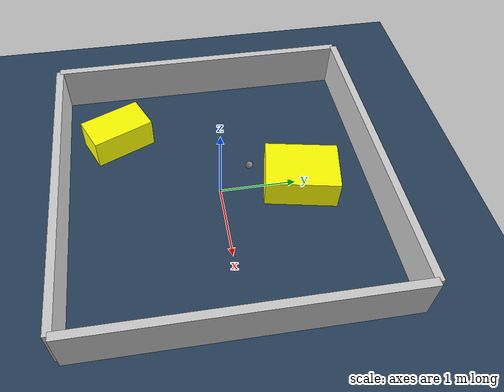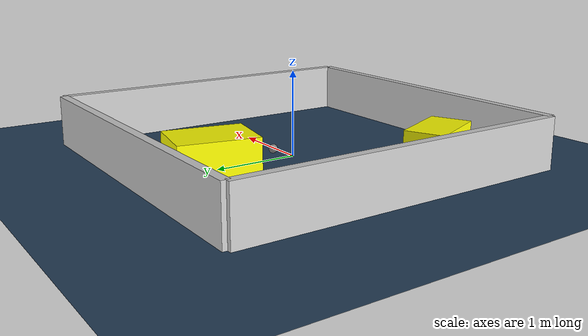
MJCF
<?xml version="1.0" ?>
<mujoco model="generated_environment">
  <option timestep="0.01" integrator="RK4" cone="elliptic"/>
  <default>
    <geom density="1"/>
  </default>
  <asset>
    <texture builtin="gradient" height="3072" rgb1="0.3 0.5 0.7" rgb2="0 0 0" type="skybox" width="512"/>
    <texture builtin="checker" height="300" mark="edge" markrgb="0.8 0.8 0.8" name="groundplane" rgb1="0.2 0.3 0.4" rgb2="0.1 0.2 0.3" type="2d" width="300"/>
    <material name="groundplane" reflectance="0.2" texrepeat="5 5" texture="groundplane" texuniform="true"/>
    <material name="robot" rgba="0.0 1.0 0.0 1"/>
  </asset>
  <worldbody>
    <light dir="0 0 -1" directional="true" pos="0 0 1.5"/>
    <geom condim="4" friction="1.0 0.005 0.001" material="groundplane" name="floor" size="0 0 0.05" type="plane"/>
    <body name="walls">
      <geom name="wall_1" condim="4" pos="-2.0 0.0 0.3" rgba="0.800000011920929 0.800000011920929 0.800000011920929 1.0" size="0.05 2.0 0.3" type="box"/>
      <geom name="wall_2" condim="4" pos="2.0 0.0 0.3" rgba="0.800000011920929 0.800000011920929 0.800000011920929 1.0" size="0.05 2.0 0.3" type="box"/>
      <geom name="wall_3" condim="4" pos="0.0 -2.0 0.3" rgba="0.800000011920929 0.800000011920929 0.800000011920929 1.0" size="2.0 0.05 0.3" type="box"/>
      <geom name="wall_4" condim="4" pos="0.0 2.0 0.3" rgba="0.800000011920929 0.800000011920929 0.800000011920929 1.0" size="2.0 0.05 0.3" type="box"/>
    </body>
    <body name="robot">
      <joint name="joint_x" type="slide" pos="0 0 0" axis="1 0 0"/>
      <joint name="joint_y" type="slide" pos="0 0 0" axis="0 1 0"/>
      <geom name="robot" type="sphere" pos="-0.21639466450043132 0.41351652678362916 0.2" size="0.05" mass="5." friction="1.0 0.005 0.0001" condim="4"/>
      <site name="sensor_ball"/>
    </body>
    <body name="obstacle_1_movable">
      <geom name="obstacle_1_movable" condim="4" pos="0.04702424827245166 1.0452922428190616 0.2" euler="0 0 169.00181394971204" friction="1.0 0.005 0.001" rgba="1 1 0 1" size="0.34418264188764963 0.4681859558604206 0.2" type="box" mass="0.1"/>
      <joint type="free"/>
    </body>
    <body name="obstacle_2_movable">
      <geom name="obstacle_2_movable" condim="4" pos="-1.056021488942963 -1.2671646244608854 0.2" euler="0 0 293.7887790123539" friction="1.0 0.005 0.001" rgba="1 1 0 1" size="0.41508781472408285 0.24114833886253437 0.2" type="box" mass="0.1"/>
      <joint type="free"/>
    </body>
  </worldbody>
  <actuator>
    <motor name="actuator_x" joint="joint_x" gear="1" ctrlrange="-1 1"/>
    <motor name="actuator_y" joint="joint_y" gear="1" ctrlrange="-1 1"/>
  </actuator>
</mujoco>
